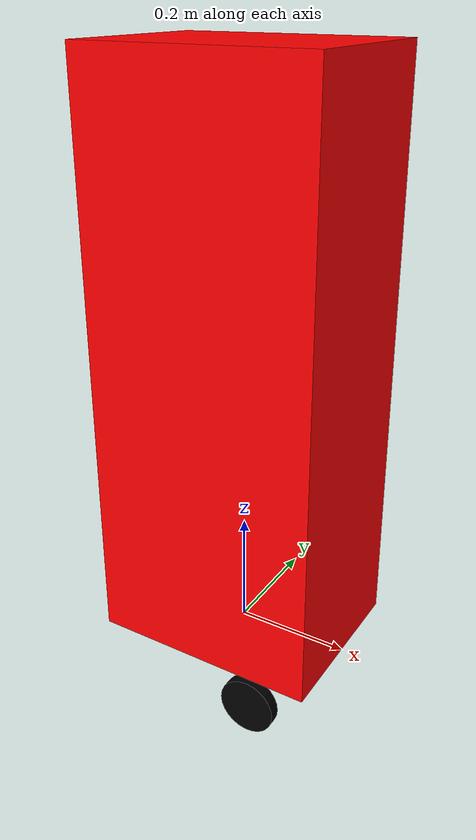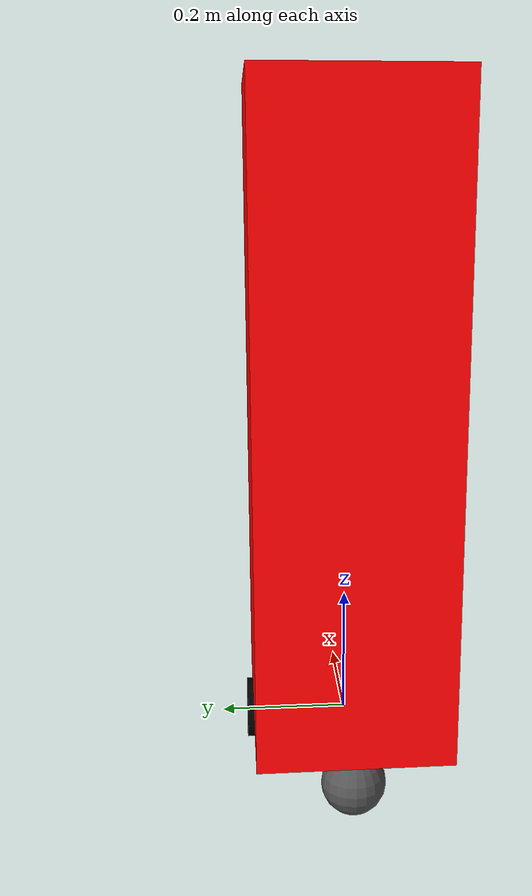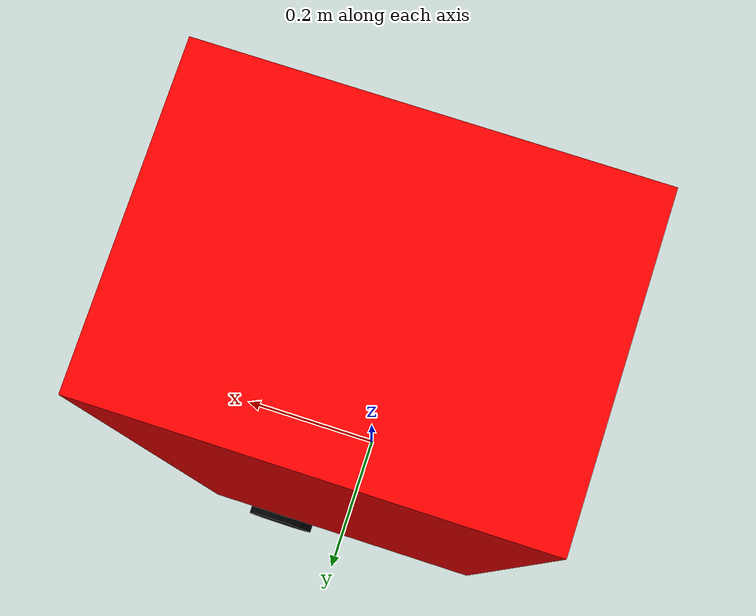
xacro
<?xml version="1.0"?>
<robot xmlns:xacro="http://www.ros.org/wiki/xacro" name="moving_bot">
    <xacro:arg name="namespace" default="moving_bot"/>

    <!-- Remove initial pose arguments as we'll handle this in spawn -->
    <xacro:property name="robot_namespace" value="$(arg namespace)"/>

    <!-- Include the components -->
    <xacro:include filename="moving_bot_base.xacro"/>
    <xacro:include filename="wheels.xacro"/>
    <xacro:include filename="gazebo_plugins.xacro"/>

    <!-- Create the robot without position offsets -->
    <xacro:base namespace="${robot_namespace}" x="0" y="0" z="0"/>
    <xacro:wheels namespace="${robot_namespace}"/>
    <xacro:gazebo_plugins namespace="${robot_namespace}"/>
</robot>

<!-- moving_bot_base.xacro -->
<robot xmlns:xacro="http://www.ros.org/wiki/xacro">
    <!-- Define materials -->
    <material name="blue">
        <color rgba="0 0 1 1"/>
    </material>
    <material name="red">
        <color rgba="1 0 0 1"/>
    </material>
    <material name="black">
        <color rgba="0 0 0 1"/>
    </material>
    <material name="gray">
        <color rgba="0.33 0.33 0.33 1"/>
    </material>

    <!-- Base macro definition with taller height -->
    <xacro:macro name="base" params="namespace x y z">
        <!-- Odom Link -->
        <link name="${namespace}/odom"/>

        <!-- Base Link - Modified to be taller -->
        <link name="${namespace}/base_link">
            <visual>
                <geometry>
                    <box size="0.4 0.3 1.0"/>  <!-- Changed height from 0.1 to 1.0 -->
                </geometry>
                <material name="red"/>  <!-- Changed color to red to distinguish it -->
                <origin xyz="0 0 0.5"/>  <!-- Moved origin up by half height to keep wheels at bottom -->
            </visual>
            <collision>
                <geometry>
                    <box size="0.4 0.3 1.0"/>  <!-- Matching collision geometry -->
                </geometry>
                <origin xyz="0 0 0.5"/>  <!-- Matching collision origin -->
            </collision>
            <inertial>
                <mass value="5.0"/>  <!-- Increased mass for the taller structure -->
                <origin xyz="0 0 0.5"/>
                <inertia
                    ixx="0.43" ixy="0.0" ixz="0.0"
                    iyy="0.43" iyz="0.0" izz="0.05"
                />
            </inertial>
        </link>

        <!-- Odom Joint -->
        <joint name="${namespace}/odom_joint" type="fixed">
            <parent link="${namespace}/odom"/>
            <child link="${namespace}/base_link"/>
            <origin xyz="${x} ${y} ${z}" rpy="0 0 0"/>
        </joint>
    </xacro:macro>
</robot>

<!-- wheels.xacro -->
<robot xmlns:xacro="http://www.ros.org/wiki/xacro">

    <xacro:macro name="wheels" params="namespace">
        <!-- Left Wheel -->
        <link name="${namespace}/left_wheel">
            <visual>
                <geometry>
                    <cylinder length="0.02" radius="0.05"/>
                </geometry>
                <material name="black"/>
            </visual>
            <collision>
                <geometry>
                    <cylinder length="0.02" radius="0.05"/>
                </geometry>
            </collision>
            <inertial>
                <mass value="0.5"/>
                <origin xyz="0 0 0"/>
                <inertia ixx="0.001" ixy="0.0" ixz="0.0" iyy="0.001" iyz="0.0" izz="0.001"/>
            </inertial>
        </link>

        <joint name="${namespace}/left_wheel_joint" type="continuous">
            <parent link="${namespace}/base_link"/>
            <child link="${namespace}/left_wheel"/>
            <origin xyz="0.10 0.15 -0.05" rpy="-1.5707 0 0"/>
            <axis xyz="0 0 1"/>
        </joint>

        <!-- Right Wheel -->
        <link name="${namespace}/right_wheel">
            <visual>
                <geometry>
                    <cylinder length="0.02" radius="0.05"/>
                </geometry>
                <material name="black"/>
            </visual>
            <collision>
                <geometry>
                    <cylinder length="0.02" radius="0.05"/>
                </geometry>
            </collision>
            <inertial>
                <mass value="0.5"/>
                <origin xyz="0 0 0"/>
                <inertia ixx="0.001" ixy="0.0" ixz="0.0" iyy="0.001" iyz="0.0" izz="0.001"/>
            </inertial>
        </link>

        <joint name="${namespace}/right_wheel_joint" type="continuous">
            <parent link="${namespace}/base_link"/>
            <child link="${namespace}/right_wheel"/>
            <origin xyz="0.10 -0.15 -0.05" rpy="-1.5707 0 0"/>
            <axis xyz="0 0 1"/>
        </joint>

        <!-- Caster Wheel -->
        <link name="${namespace}/caster_wheel">
            <visual>
                <geometry>
                    <sphere radius="0.05"/>
                </geometry>
                <material name="gray"/>
            </visual>
            <collision>
                <geometry>
                    <sphere radius="0.05"/>
                </geometry>
            </collision>
            <inertial>
                <mass value="0.1"/>
                <origin xyz="0 0 0"/>
                <inertia ixx="0.0001" ixy="0.0" ixz="0.0" iyy="0.0001" iyz="0.0" izz="0.0001"/>
            </inertial>
        </link>

        <joint name="${namespace}/caster_wheel_joint" type="fixed">
            <parent link="${namespace}/base_link"/>
            <child link="${namespace}/caster_wheel"/>
            <origin xyz="-0.15 0.0 -0.05" rpy="0 0 0"/>
        </joint>
    </xacro:macro>

</robot>
